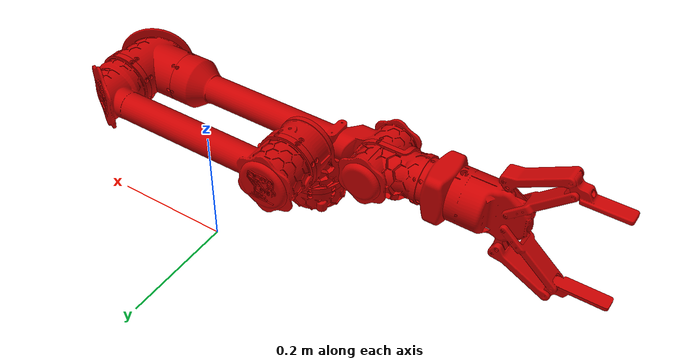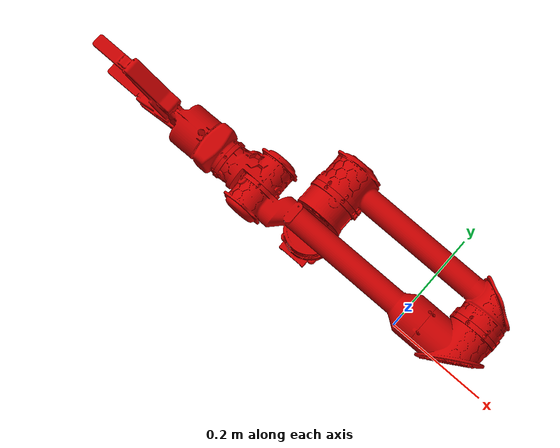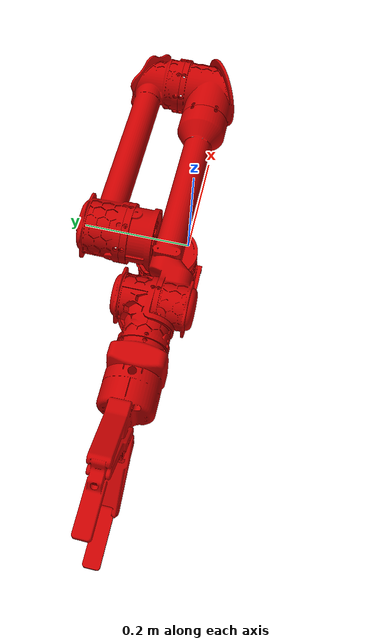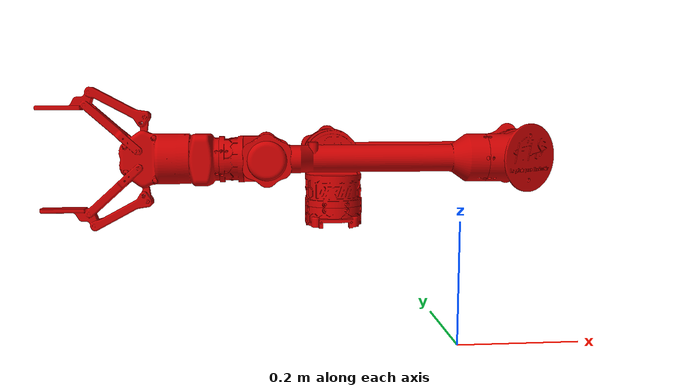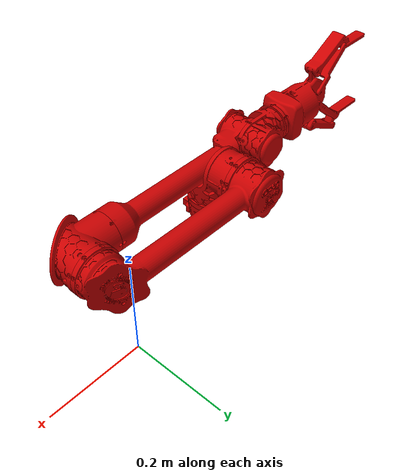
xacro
<?xml version="1.0"?>

<robot name="ovis" xmlns:xacro="http://www.ros.org/wiki/xacro">

    <xacro:include filename="$(find ovis_description)/urdf/gazebo.urdf.xacro" />
    <xacro:include
        filename="$(find ovis_description)/urdf/ovis2/urdf/ovis.urdf.xacro" />
    <xacro:include
        filename="$(find ovis_description)/urdf/ovis2/urdf/ovis_common.xacro" />

    <xacro:property name="robot_root" value="ovis_base_link" />
    <link name="base_link" />

    <!-- Define the base link -->
    <link name="ovis_base_link">
        <inertial>
            <origin xyz="0 0 0" />
            <mass value="1.0" />
            <inertia ixx="1.0" ixy="0.0" ixz="0.0" iyy="1.0" iyz="0.0" izz="1.0" />
        </inertial>
    </link>

    <!-- Attach the ovis_base_link to the world or rove with a fixed joint -->
    <joint name="fixed_to_world" type="fixed">
        <parent link="base_link" />
        <child link="ovis_base_link" />
        <origin xyz="-0.2 0 0.2" rpy="0 0 0" />
    </joint>

    <xacro:ovis base_parent="${robot_root}" />

</robot>

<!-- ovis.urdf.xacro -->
<root xmlns:xacro="http://www.ros.org/wiki/xacro">

    <xacro:property name="link_base_mesh" value="ovis_base" />
    <xacro:property name="link_1_mesh" value="ovis_j12" />
    <xacro:property name="link_2_mesh" value="ovis_j23" />
    <xacro:property name="link_3_mesh" value="ovis_j34" />
    <xacro:property name="link_4_mesh" value="ovis_j45" />
    <xacro:property name="link_5_mesh" value="ovis_j56" />
    <xacro:property name="link_6_mesh" value="ovis_end_effector" />

    <xacro:property name="link_base_mesh_no" value="0" />
    <xacro:property name="link_1_mesh_no" value="1" />
    <xacro:property name="link_2_mesh_no" value="2" />
    <xacro:property name="link_3_mesh_no" value="3" />
    <xacro:property name="link_4_mesh_no" value="4" />
    <xacro:property name="link_5_mesh_no" value="4" />
    <xacro:property name="link_6_mesh_no" value="55" />

    <xacro:property name="joint_base" value="joint_base" />
    <xacro:property name="joint_base_type" value="fixed" />
    <xacro:property name="joint_base_axis_xyz" value="0 0 0" />
    <!-- Transferred to a parameter in the ovis macro -->
    <xacro:property name="joint_base_origin_rpy" value="0 0 0" />

    <xacro:property name="joint_1" value="joint_1" />
    <xacro:property name="joint_1_type" value="continuous" />
    <xacro:property name="joint_1_axis_xyz" value="0 0 1" />
    <xacro:property name="joint_1_origin_xyz" value="0 0 0.03" />
    <xacro:property name="joint_1_origin_rpy" value="0 0 0" />
    <xacro:property name="joint_1_lower_limit" value="${-4*J_PI}" />
    <xacro:property name="joint_1_upper_limit" value="${4*J_PI}" />
    <xacro:property name="joint_1_velocity_limit" value="${36*J_PI/180}" />
    <xacro:property name="joint_1_torque_limit" value="40" />

    <xacro:property name="joint_2" value="joint_2" />
    <xacro:property name="joint_2_type" value="revolute" />
    <xacro:property name="joint_2_axis_xyz" value="0 1 0" />
    <xacro:property name="joint_2_origin_xyz" value="0.00004 0.0625 0.07001" />
    <xacro:property name="joint_2_origin_rpy" value="0 0 0" />
    <xacro:property name="joint_2_lower_limit" value="-3.40339" />
    <xacro:property name="joint_2_upper_limit" value="0.26180" />
    <xacro:property name="joint_2_velocity_limit" value="${36*J_PI/180}" />
    <xacro:property name="joint_2_torque_limit" value="80" />

    <xacro:property name="joint_3" value="joint_3" />
    <xacro:property name="joint_3_type" value="revolute" />
    <xacro:property name="joint_3_axis_xyz" value="0 -1 0" />
    <xacro:property name="joint_3_origin_xyz" value="0.30039 -0.01763 0.00072" />
    <xacro:property name="joint_3_origin_rpy" value="0 0 0" />
    <xacro:property name="joint_3_lower_limit" value="-5.23599" />
    <xacro:property name="joint_3_upper_limit" value="0" />
    <xacro:property name="joint_3_velocity_limit" value="${36*J_PI/180}" />
    <xacro:property name="joint_3_torque_limit" value="40" />

    <xacro:property name="joint_4" value="joint_4" />
    <xacro:property name="joint_4_type" value="continuous" />
    <xacro:property name="joint_4_axis_xyz" value="-1 0 0" />
    <xacro:property name="joint_4_origin_xyz" value="-0.06672 -0.04897 -0.00044" />
    <xacro:property name="joint_4_origin_rpy" value="0 0 0" />
    <xacro:property name="joint_4_lower_limit" value="${-4*J_PI}" />
    <xacro:property name="joint_4_upper_limit" value="${4*J_PI}" />
    <xacro:property name="joint_4_velocity_limit" value="${48*J_PI/180}" />
    <xacro:property name="joint_4_torque_limit" value="20" />

    <xacro:property name="joint_5" value="joint_5" />
    <xacro:property name="joint_5_type" value="revolute" />
    <xacro:property name="joint_5_axis_xyz" value="0 1 0" />
    <xacro:property name="joint_5_origin_xyz" value="-0.33480 0.00015 0.00051" />
    <xacro:property name="joint_5_origin_rpy" value="0 0 0" />
    <xacro:property name="joint_5_lower_limit" value="-1.65806" />
    <xacro:property name="joint_5_upper_limit" value="1.65806" />
    <xacro:property name="joint_5_velocity_limit" value="${48*J_PI/180}" />
    <xacro:property name="joint_5_torque_limit" value="20" />

    <xacro:property name="joint_6" value="joint_6" />
    <xacro:property name="joint_6_type" value="continuous" />
    <xacro:property name="joint_6_axis_xyz" value="-1 0 0" />
    <xacro:property name="joint_6_origin_xyz" value="-0.07 0.00003 0.00001" />
    <xacro:property name="joint_6_origin_rpy" value="0 0 0" />
    <!-- If gripper inverted, use this line instead -->
    <xacro:property name="joint_6_lower_limit" value="${-2*J_PI}" />
    <xacro:property name="joint_6_upper_limit" value="${2*J_PI}" />
    <xacro:property name="joint_6_velocity_limit" value="${48*J_PI/180}" />
    <xacro:property name="joint_6_torque_limit" value="20" />

    <xacro:property name="joint_end_effector" value="end_effector_offset" />
    <xacro:property name="joint_end_effector_type" value="fixed" />
    <xacro:property name="joint_end_effector_axis_xyz" value="0 0 0" />
    <xacro:property name="joint_end_effector_origin_xyz" value="-0.25 0 0" />
    <xacro:property name="joint_end_effector_origin_rpy" value="${J_PI} 0 ${J_PI/2}" />

    <xacro:macro name="ovis" params="base_parent prefix:=ovis joint_base_origin_xyz:='0 0 0'">

        <xacro:kinova_armlink link_name="${prefix}_link_base" link_mesh="${link_base_mesh}"
            mesh_no="${link_base_mesh_no}" />
        <xacro:kinova_armjoint joint_name="${prefix}_joint_base" type="${joint_base_type}"
            parent="${base_parent}" child="${prefix}_link_base"
            joint_axis_xyz="${joint_base_axis_xyz}" joint_origin_xyz="${joint_base_origin_xyz}"
            joint_origin_rpy="${joint_base_origin_rpy}" joint_lower_limit="0" joint_upper_limit="0"
            joint_velocity_limit="0" joint_torque_limit="0" fixed="true" />

        <xacro:kinova_armlink link_name="${prefix}_link_1" link_mesh="${link_1_mesh}"
            use_ring_mesh="false" mesh_no="${link_1_mesh_no}" />
        <xacro:kinova_armjoint joint_name="${prefix}_joint_1" type="${joint_1_type}"
            parent="${prefix}_link_base" child="${prefix}_link_1"
            joint_axis_xyz="${joint_1_axis_xyz}" joint_origin_xyz="${joint_1_origin_xyz}"
            joint_origin_rpy="${joint_1_origin_rpy}" joint_lower_limit="${joint_1_lower_limit}"
            joint_upper_limit="${joint_1_upper_limit}"
            joint_velocity_limit="${joint_1_velocity_limit}"
            joint_torque_limit="${joint_1_torque_limit}" />

        <xacro:kinova_armlink link_name="${prefix}_link_2" link_mesh="${link_2_mesh}"
            use_ring_mesh="false" mesh_no="${link_2_mesh_no}" />
        <xacro:kinova_armjoint joint_name="${prefix}_joint_2" type="${joint_2_type}"
            parent="${prefix}_link_1" child="${prefix}_link_2" joint_axis_xyz="${joint_2_axis_xyz}"
            joint_origin_xyz="${joint_2_origin_xyz}" joint_origin_rpy="${joint_2_origin_rpy}"
            joint_lower_limit="${joint_2_lower_limit}" joint_upper_limit="${joint_2_upper_limit}"
            joint_velocity_limit="${joint_2_velocity_limit}"
            joint_torque_limit="${joint_2_torque_limit}" />

        <xacro:kinova_armlink link_name="${prefix}_link_3" link_mesh="${link_3_mesh}"
            use_ring_mesh="false" mesh_no="${link_3_mesh_no}" />
        <xacro:kinova_armjoint joint_name="${prefix}_joint_3" type="${joint_3_type}"
            parent="${prefix}_link_2" child="${prefix}_link_3" joint_axis_xyz="${joint_3_axis_xyz}"
            joint_origin_xyz="${joint_3_origin_xyz}" joint_origin_rpy="${joint_3_origin_rpy}"
            joint_lower_limit="${joint_3_lower_limit}" joint_upper_limit="${joint_3_upper_limit}"
            joint_velocity_limit="${joint_3_velocity_limit}"
            joint_torque_limit="${joint_3_torque_limit}" />

        <xacro:kinova_armlink link_name="${prefix}_link_4" link_mesh="${link_4_mesh}"
            use_ring_mesh="false" ring_mesh="ring_small" mesh_no="${link_4_mesh_no}" />
        <xacro:kinova_armjoint joint_name="${prefix}_joint_4" type="${joint_4_type}"
            parent="${prefix}_link_3" child="${prefix}_link_4" joint_axis_xyz="${joint_4_axis_xyz}"
            joint_origin_xyz="${joint_4_origin_xyz}" joint_origin_rpy="${joint_4_origin_rpy}"
            joint_lower_limit="${joint_4_lower_limit}" joint_upper_limit="${joint_4_upper_limit}"
            joint_velocity_limit="${joint_4_velocity_limit}"
            joint_torque_limit="${joint_4_torque_limit}" />

        <xacro:kinova_armlink link_name="${prefix}_link_5" link_mesh="${link_5_mesh}"
            use_ring_mesh="false" ring_mesh="ring_small" mesh_no="${link_5_mesh_no}" />
        <xacro:kinova_armjoint joint_name="${prefix}_joint_5" type="${joint_5_type}"
            parent="${prefix}_link_4" child="${prefix}_link_5" joint_axis_xyz="${joint_5_axis_xyz}"
            joint_origin_xyz="${joint_5_origin_xyz}" joint_origin_rpy="${joint_5_origin_rpy}"
            joint_lower_limit="${joint_5_lower_limit}" joint_upper_limit="${joint_5_upper_limit}"
            joint_velocity_limit="${joint_5_velocity_limit}"
            joint_torque_limit="${joint_5_torque_limit}" />

        <xacro:kinova_armlink link_name="${prefix}_link_6" link_mesh="${link_6_mesh}"
            use_ring_mesh="false" ring_mesh="ring_small" mesh_no="${link_6_mesh_no}" />
        <xacro:kinova_armjoint joint_name="${prefix}_joint_6" type="${joint_6_type}"
            parent="${prefix}_link_5" child="${prefix}_link_6" joint_axis_xyz="${joint_6_axis_xyz}"
            joint_origin_xyz="${joint_6_origin_xyz}" joint_origin_rpy="${joint_6_origin_rpy}"
            joint_lower_limit="${joint_6_lower_limit}" joint_upper_limit="${joint_6_upper_limit}"
            joint_velocity_limit="${joint_6_velocity_limit}"
            joint_torque_limit="${joint_6_torque_limit}" />

        <xacro:kinova_virtual_link link_name="${prefix}_end_effector" />
        <xacro:kinova_virtual_joint joint_name="${prefix}_joint_end_effector"
            type="${joint_end_effector_type}" parent="${prefix}_link_6"
            child="${prefix}_end_effector" joint_axis_xyz="${joint_end_effector_axis_xyz}"
            joint_origin_xyz="${joint_end_effector_origin_xyz}"
            joint_origin_rpy="${joint_end_effector_origin_rpy}" joint_lower_limit="0"
            joint_upper_limit="0" />

    </xacro:macro>

</root>

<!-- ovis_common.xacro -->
<root xmlns:xi="http://www.w3.org/2001/XInclude"
	xmlns:gazebo="http://playerstage.sourceforge.net/gazebo/xmlschema/#gz"
    xmlns:model="http://playerstage.sourceforge.net/gazebo/xmlschema/#model"
	xmlns:sensor="http://playerstage.sourceforge.net/gazebo/xmlschema/#sensor"
	xmlns:body="http://playerstage.sourceforge.net/gazebo/xmlschema/#body"
    xmlns:geom="http://playerstage.sourceforge.net/gazebo/xmlschema/#geom"
    xmlns:joint="http://playerstage.sourceforge.net/gazebo/xmlschema/#joint"
	xmlns:controller="http://playerstage.sourceforge.net/gazebo/xmlschema/#controller"
	xmlns:interface="http://playerstage.sourceforge.net/gazebo/xmlschema/#interface"
	xmlns:rendering="http://playerstage.sourceforge.net/gazebo/xmlschema/#rendering"
    xmlns:renderable="http://playerstage.sourceforge.net/gazebo/xmlschema/#renderable"
    xmlns:physics="http://playerstage.sourceforge.net/gazebo/xmlschema/#physics"
	xmlns:xacro="http://www.ros.org/wiki/xacro">

    <xacro:property name="J_PI" value="3.1415926535897931" />

    <xacro:macro name="kinova_armlink" params="link_name link_mesh ring_mesh:=ring_big use_ring_mesh:=false mesh_no">
        <link name="${link_name}">
            <visual name="${link_name}_vis">
                <geometry>
                    <mesh filename="file://$(find ovis_description)/urdf/ovis2/meshes/visual/${link_mesh}.stl"/>
                </geometry>
                <material name="carbon_fiber">
                    <color rgba="0.792156862745098 0 0 1" />
                </material>
            </visual>
            <collision name="${link_name}_col">
                <geometry>
                    <mesh filename="file://$(find ovis_description)/urdf/ovis2/meshes/collision/${link_mesh}.stl"/>
                </geometry>
            </collision>
            <inertial>
                <inertia ixx="0.00001" ixy="0.00000" ixz="0.00000" iyy="0.00001" iyz="0.00000" izz="0.00001"/>
                <origin rpy="0.00000 0.00000 0.00000" xyz="0.00000 0.00000 0.00000"/>
                <mass value="0.1"/>
            </inertial>
        </link>
    </xacro:macro>

  <xacro:property name="dummy_default_value" value="1234567890"/>
  <xacro:macro name="kinova_armjoint" params="joint_name
                                              type
                                              parent
                                              child
                                              joint_axis_xyz
                                              joint_origin_xyz
                                              joint_origin_rpy
                                              joint_lower_limit:=${dummy_default_value}
                                              joint_upper_limit:=${dummy_default_value}
                                              joint_velocity_limit:=${dummy_default_value}
                                              joint_torque_limit:=${dummy_default_value}
                                              fixed:=false">
    <xacro:if value="${(type == 'fixed' and not fixed) or (type != 'fixed' and fixed)}"><xacro:ERROR_inconsistent_joint_type_specification/></xacro:if>
    <xacro:if value="${type == 'revolute'}">
      <xacro:if value="${joint_lower_limit == dummy_default_value}"><xacro:ERROR_joint_lower_limit_needs_to_be_set_for_a_revolute_joint/></xacro:if>
      <xacro:if value="${joint_upper_limit == dummy_default_value}"><xacro:ERROR_joint_upper_limit_needs_to_be_set_for_a_revolute_joint/></xacro:if>
    </xacro:if>
    <xacro:unless value="${type =='fixed'}">
      <xacro:if value="${joint_velocity_limit == dummy_default_value}"><xacro:ERROR_joint_velocity_limit_needs_to_be_set_for_a_non_fixed_joint/></xacro:if>
      <xacro:if value="${joint_torque_limit == dummy_default_value}"><xacro:ERROR_joint_torque_limit_needs_to_be_set_for_a_non_fixed_joint/></xacro:if>
    </xacro:unless>
    <joint name="${joint_name}" type="${type}">
        <parent link="${parent}"/>
        <child link="${child}"/>
        <axis xyz="${joint_axis_xyz}"/>
        <xacro:if value="${type == 'revolute'}">
        <limit effort="${joint_torque_limit}" velocity="${joint_velocity_limit}" lower="${joint_lower_limit}" upper="${joint_upper_limit}"/>
        </xacro:if>
        <xacro:if value="${type == 'continuous'}">
        <limit effort="${joint_torque_limit}" velocity="${joint_velocity_limit}"/>
        </xacro:if>
        <origin xyz="${joint_origin_xyz}" rpy="${joint_origin_rpy}"/>
        <dynamics damping="0.0" friction="0.0"/>
     </joint>
   <xacro:unless value="${fixed}">
     <transmission name="${joint_name}_trans">
        <type>transmission_interface/SimpleTransmission</type>
        <joint name="${joint_name}">
          <hardwareInterface>hardware_interface/EffortJointInterface</hardwareInterface>
        </joint>
        <actuator name="${joint_name}_actuator">
          <hardwareInterface>hardware_interface/EffortJointInterface</hardwareInterface>
        <mechanicalReduction>160</mechanicalReduction>
        </actuator>
     </transmission>
     <!--For torque sensing in simulation-->
     <gazebo reference="${joint_name}">
        <provideFeedback>true</provideFeedback>
      </gazebo>
      <gazebo>
        <plugin filename="gz-sim-forcetorque-system" name="gz::sim::systems::ForceTorque">
          <updateRate>30.0</updateRate>
          <topicName>${joint_name}_ft_sensor_topic</topicName>
          <jointName>${joint_name}</jointName>
        </plugin>
      </gazebo>
     </xacro:unless>
  </xacro:macro>

    <xacro:macro name="kinova_virtual_link" params="link_name">
        <link name="${link_name}"/>
    </xacro:macro>

    <xacro:macro name="kinova_virtual_joint" params="joint_name type parent child joint_axis_xyz joint_origin_xyz joint_origin_rpy joint_lower_limit joint_upper_limit">
    <joint name="${joint_name}" type="${type}">
        <parent link="${parent}"/>
        <child link="${child}"/>
        <axis xyz="${joint_axis_xyz}"/>
        <xacro:unless value="${type == 'fixed'}">
        <limit effort="2000" velocity="1" lower="${joint_lower_limit}" upper="${joint_upper_limit}"/>
        </xacro:unless>
        <origin xyz="${joint_origin_xyz}" rpy="${joint_origin_rpy}"/>
     </joint>
    </xacro:macro>

    <xacro:macro name="kinova_finger" params="prefix finger_number hand finger_origin_xyz finger_origin_rpy">

        <xacro:kinova_armlink link_name="${prefix}link_finger_${finger_number}" link_mesh="finger_proximal" mesh_no="57"/>

        <joint name="${prefix}joint_finger_${finger_number}" type="revolute">
            <parent link="${hand}"/>
            <child link="${prefix}link_finger_${finger_number}"/>
            <axis xyz="0 0 1"/>
            <origin xyz="${finger_origin_xyz}" rpy="${finger_origin_rpy}"/>
            <limit lower="0" upper="1.51" effort="2" velocity="1"/>
        </joint>
		    <transmission name="${prefix}joint_finger_${finger_number}_trans">
					<type>transmission_interface/SimpleTransmission</type>
					<joint name="${prefix}joint_finger_${finger_number}">
					  <hardwareInterface>hardware_interface/EffortJointInterface</hardwareInterface>
					</joint>
					<actuator name="${prefix}joint_finger_${finger_number}_actuator">
					<hardwareInterface>hardware_interface/EffortJointInterface</hardwareInterface>
					<mechanicalReduction>1</mechanicalReduction>
					</actuator>
		    </transmission>

        <xacro:kinova_armlink link_name="${prefix}link_finger_tip_${finger_number}" link_mesh="finger_distal" mesh_no="58"/>

        <joint name="${prefix}joint_finger_tip_${finger_number}" type="revolute">
            <parent link="${prefix}link_finger_${finger_number}"/>
            <child link="${prefix}link_finger_tip_${finger_number}"/>
            <axis xyz="0 0 1"/>
            <origin xyz="0.044 -0.003 0" rpy="0 0 0"/>
            <limit lower="0" upper="2" effort="2" velocity="1"/>
        </joint>
        <transmission name="${prefix}joint_finger_tip_${finger_number}_trans">
					<type>transmission_interface/SimpleTransmission</type>
					<joint name="${prefix}joint_finger_tip_${finger_number}">
					  <hardwareInterface>hardware_interface/EffortJointInterface</hardwareInterface>
					</joint>
					<actuator name="${prefix}joint_finger_tip_${finger_number}_actuator">
					<hardwareInterface>hardware_interface/EffortJointInterface</hardwareInterface>
					<mechanicalReduction>1</mechanicalReduction>
					</actuator>
        </transmission>

    </xacro:macro>

</root>
